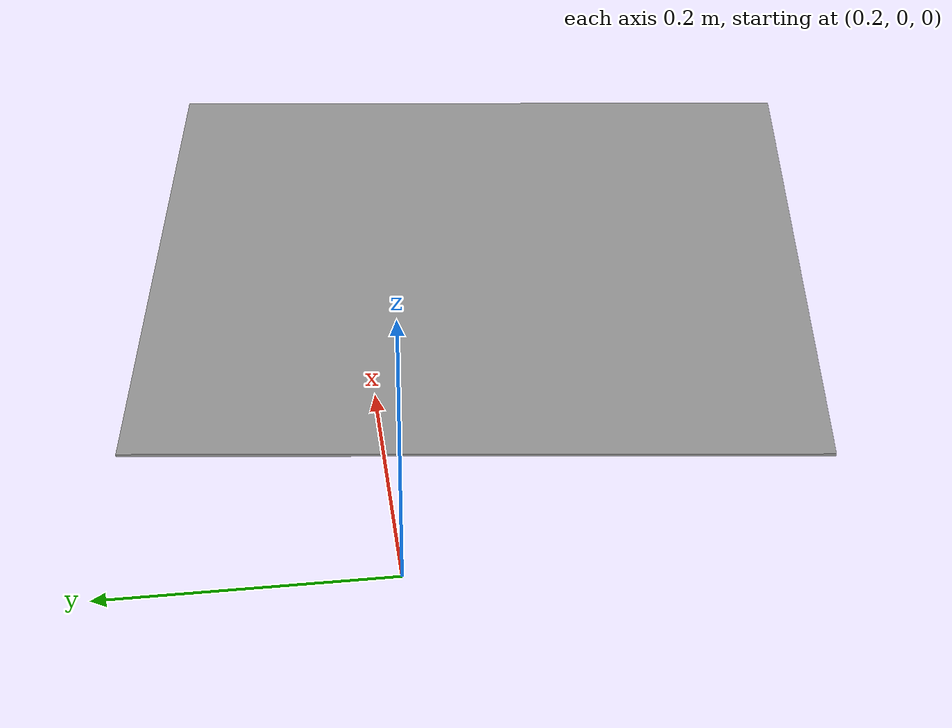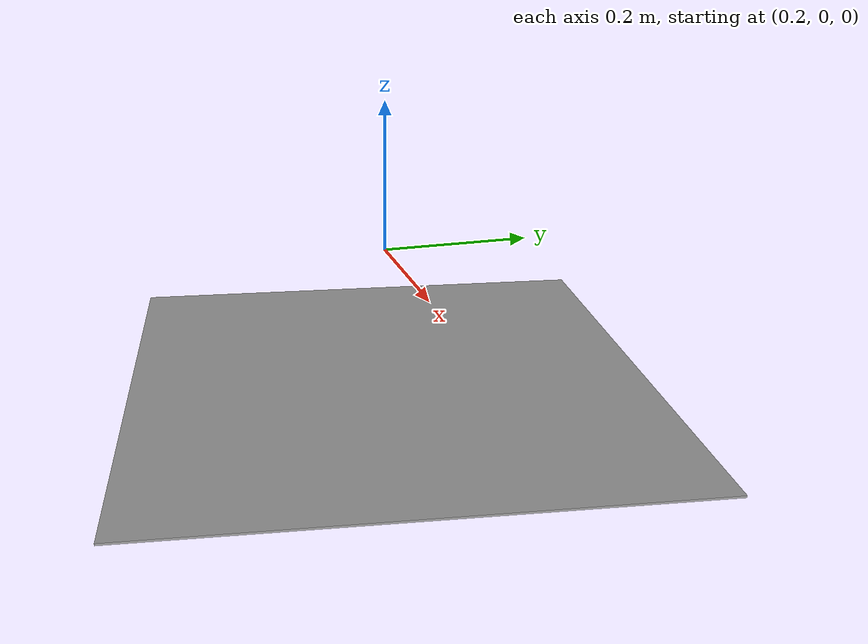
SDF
<?xml version='1.0'?>
<sdf version='1.6'>
  <model name='goal'>
    <link name='link_0'>
      <pose frame=''>0.575057 -0.095236 -0.004709 -0.004302 0.002364 -0.127685</pose>
      <inertial>
        <mass>0.0011298</mass>
        <inertia>
          <ixx>2.35e-05</ixx>
          <ixy>0</ixy>
          <ixz>0</ixz>
          <iyy>2.427e-05</iyy>
          <iyz>0</iyz>
          <izz>4.776e-05</izz>
        </inertia>
        <pose frame=''>0 0 0 0 -0 0</pose>
      </inertial>
      <gravity>1</gravity>
      <self_collide>0</self_collide>
      <kinematic>0</kinematic>
      <visual name='visual'>
        <pose frame=''>0 0 0 0 -0 0</pose>
        <geometry>
          <box>
            <size>0.5 0.499542 0.002</size>
          </box>
        </geometry>
        <material>
          <lighting>1</lighting>
          <script>
            <uri>file://media/materials/scripts/gazebo.material</uri>
            <name>Gazebo/Grey</name>
          </script>
          <ambient>0.3 0.3 0.3 1</ambient>
          <diffuse>0.7 0.7 0.7 1</diffuse>
          <specular>0.01 0.01 0.01 1</specular>
          <emissive>0 0 0 1</emissive>
          <shader type='vertex'>
            <normal_map>__default__</normal_map>
          </shader>
        </material>
        <cast_shadows>1</cast_shadows>
        <transparency>0</transparency>
      </visual>
      <collision name='collision'>
        <laser_retro>0</laser_retro>
        <max_contacts>10</max_contacts>
        <pose frame=''>0 0 0 0 -0 0</pose>
        <geometry>
          <box>
            <size>0.507727 0.499542 0.004455</size>
          </box>
        </geometry>
        <surface>
          <friction>
            <ode>
              <mu>1</mu>
              <mu2>1</mu2>
              <fdir1>0 0 0</fdir1>
              <slip1>0</slip1>
              <slip2>0</slip2>
            </ode>
            <torsional>
              <coefficient>1</coefficient>
              <patch_radius>0</patch_radius>
              <surface_radius>0</surface_radius>
              <use_patch_radius>1</use_patch_radius>
              <ode>
                <slip>0</slip>
              </ode>
            </torsional>
          </friction>
          <bounce>
            <restitution_coefficient>0</restitution_coefficient>
            <threshold>1e+06</threshold>
          </bounce>
          <contact>
            <collide_without_contact>0</collide_without_contact>
            <collide_without_contact_bitmask>1</collide_without_contact_bitmask>
            <collide_bitmask>1</collide_bitmask>
            <ode>
              <soft_cfm>0</soft_cfm>
              <soft_erp>0.2</soft_erp>
              <kp>1e+13</kp>
              <kd>1</kd>
              <max_vel>0.01</max_vel>
              <min_depth>0</min_depth>
            </ode>
            <bullet>
              <split_impulse>1</split_impulse>
              <split_impulse_penetration_threshold>-0.01</split_impulse_penetration_threshold>
              <soft_cfm>0</soft_cfm>
              <soft_erp>0.2</soft_erp>
              <kp>1e+13</kp>
              <kd>1</kd>
            </bullet>
          </contact>
        </surface>
      </collision>
    </link>
    <static>0</static>
    <allow_auto_disable>1</allow_auto_disable>
  </model>
</sdf>
